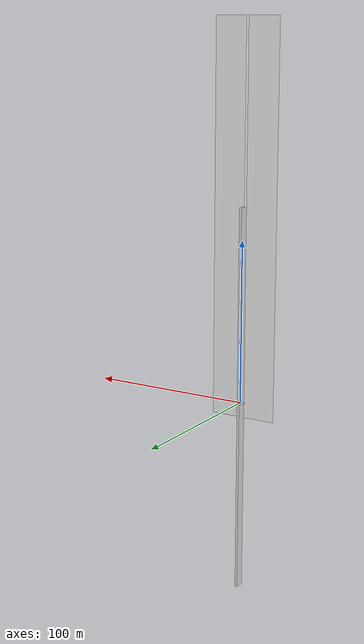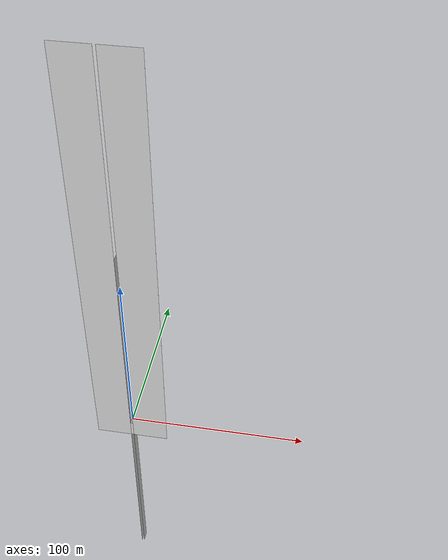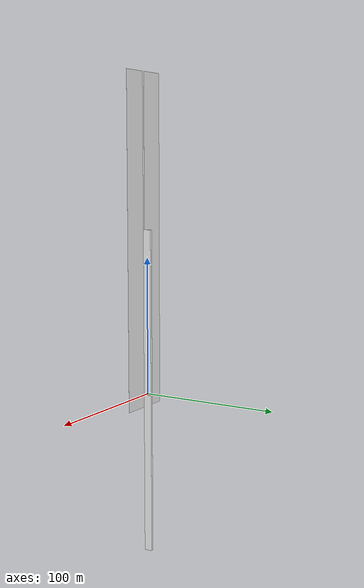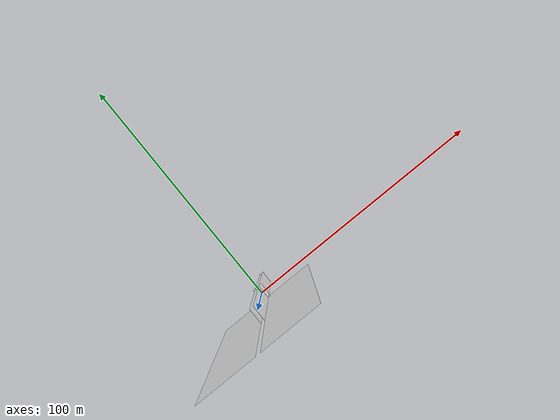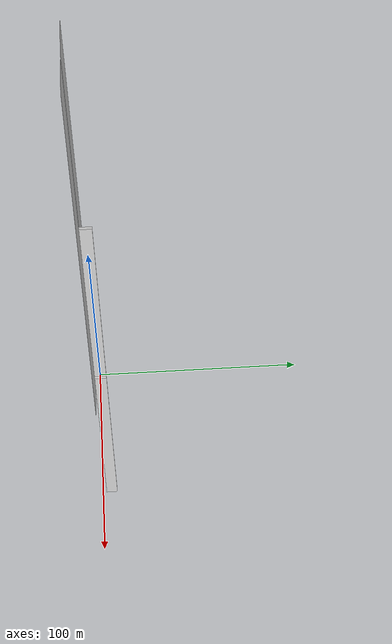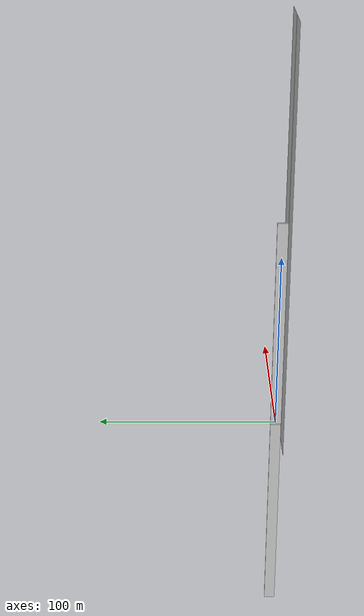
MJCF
<mujoco model="climber">
<size nconmax="512" njmax="512" />
  <asset>
    <texture name="skybox" type="skybox" builtin="gradient" rgb1=".2 .3 .4" rgb2="0 0 0" width="800" height="800" mark="random" markrgb="1 1 1"/>
    <texture name="grid" type="2d" builtin="checker" rgb1="0.35 0.45 0.50" rgb2="0.20 0.30 0.35" width="300" height="300" mark="edge" markrgb="0.25 0.35 0.40"/>
    <material name="grid" texture="grid" texrepeat="1 1" texuniform="true" reflectance=".2" />
    <material name="grid_wall" texture="grid" texrepeat="1 1" texuniform="true" reflectance=".5" emission="1.0"/>
    <material name="self" rgba="0.0 0.8 0.7 1.0"/>
  </asset>
  <visual>
    <headlight ambient=".4 .4 .4" diffuse=".6 .6 .6" specular="0.1 0.1 0.1"/>
    <map znear=".001"/>
    <quality shadowsize="16384"/>
  </visual>
  <compiler angle="degree" coordinate="global" inertiafromgeom="true"/>
  <default>
    <joint armature="1" damping="1" limited="true"/>
    <geom conaffinity="0" condim="1" margin="0.001" solimp=".8 .8 .01" solref=".02 1" rgba=".7 .5 .3 1"/>
    <motor ctrllimited="true" ctrlrange="-.4 .4"/>
  </default>
  <option integrator="RK4" timestep="0.002"/>
  <worldbody>
    <light cutoff="100" diffuse="1 1 1" dir="0 0.3 -0.6" directional="true" exponent="1" pos="0 -30 130" specular=".1 .1 .1"/>

    <geom name="floor" type="plane" pos="0 0 0" size="2 3 .125"
          condim="3" conaffinity="1"
          friction="2.2" rgba="1 1 1 1" material="grid"/>
    <geom name="wall_left"  type="plane" pos="0.75 0 0" euler="0  -90 0" size="120 3.0 .125"
          condim="3" conaffinity="1" friction="2.2" rgba="1 1 1 1" material="grid_wall"/>
    <geom name="wall_right" type="plane" pos="-0.75 0 0" euler="0 90 0" size="120 3.0 .125"
          condim="3" conaffinity="1" friction="2.2" rgba="1 1 1 1" material="grid_wall"/>

    <geom name="wall_left_vis"  type="plane" pos="-10.75 -3 110" size="10 120 .125" euler="90 0 0"
          contype="0" conaffinity="1" rgba="1 1 1 1" material="grid_wall"/>
    <geom name="wall_right_vis" type="plane" pos="10.75 -3 110" size="10 120 .125" euler="90 0 0"
          contype="0" conaffinity="1" rgba="1 1 1 1" material="grid_wall"/>
    <geom name="wall_front_vis" type="plane" pos="0 -3 -5" size="0.75 5 .125" euler="90 0 0"
          contype="0" conaffinity="1" rgba="1 1 1 1" material="grid_wall"/>

    <body name="0" pos="0 0 1.25">
      <camera name="track" mode="trackcom" pos="0 -3 1" xyaxes="1 0 0 0 0 1"/>
      <joint armature="0" axis="1 0 0" damping="0" limited="false" name="rootx" pos="0 0 0" stiffness="0" type="slide"/>
      <joint armature="0" axis="0 0 1" damping="0" limited="false" name="rootz" pos="0 0 0" ref="1.25" stiffness="0" type="slide"/>
      <joint armature="0" axis="0 1 0" damping="0" limited="false" name="0_joint" pos="0 0 1.25" stiffness="0" type="hinge"/>
      <geom friction="4.0" fromto="-0 0 1.45 0 0 1.05" size="0.05" type="capsule"/>
      <body name="1" pos="0 0 1.05">
        <joint axis="0 -1 0" name="1_joint" pos="0 0 1.05" range="-180 180" type="hinge"/>
        <geom friction="4.0" fromto="0 0 1.05 0 0 0.6" size="0.05" type="capsule"/>
      </body>
      <body name="2" pos="0 0 1.05">
        <joint axis="0 -1 0" name="2_joint" pos="0 0 1.05" range="-180 180" type="hinge"/>
        <geom friction="4.0" fromto="0 0 1.05 0 0 0.6" size="0.05" type="capsule"/>
      </body>
    </body>
  </worldbody>
  <actuator>
    <motor ctrllimited="true" ctrlrange="-1.0 1.0" gear="150" joint="1_joint" name="1_joint"/>
    <motor ctrllimited="true" ctrlrange="-1.0 1.0" gear="150" joint="2_joint" name="2_joint"/>
  </actuator>
</mujoco>
